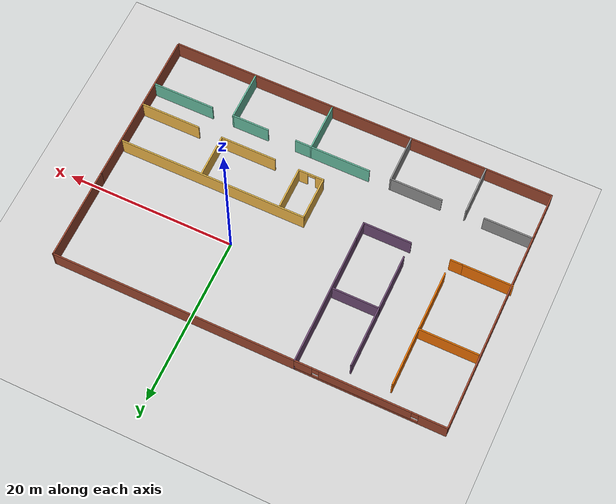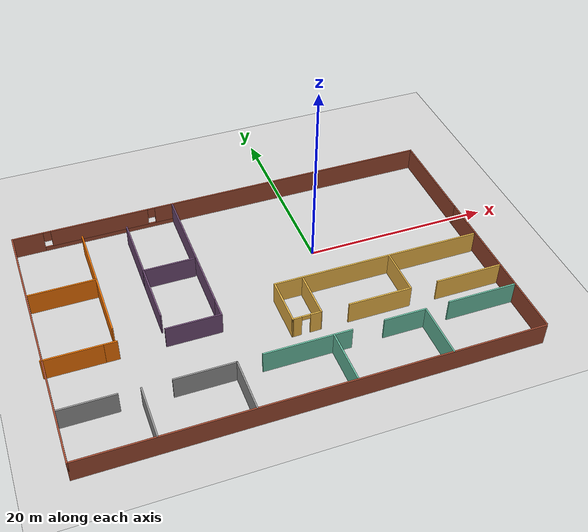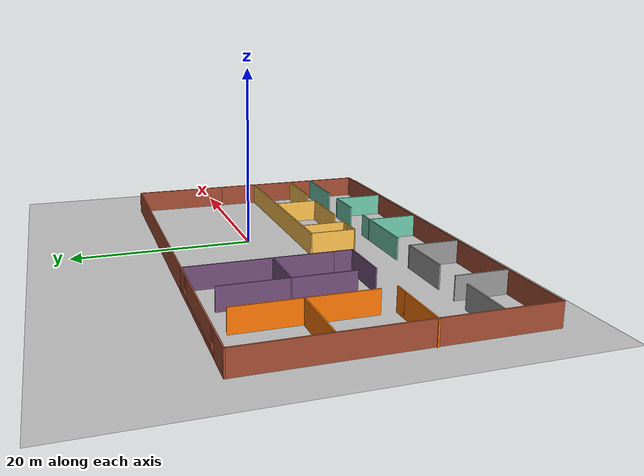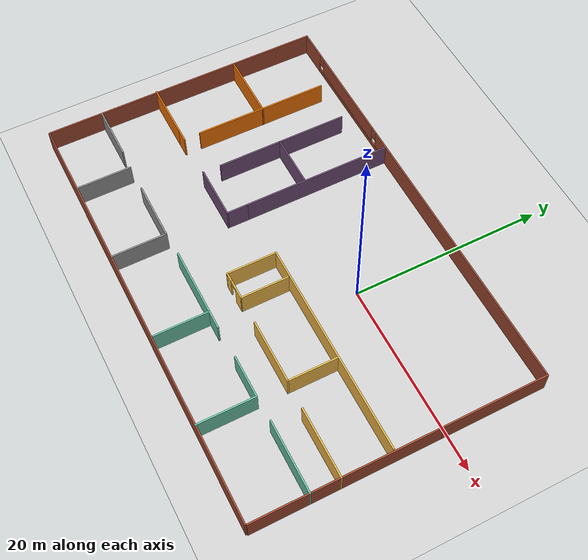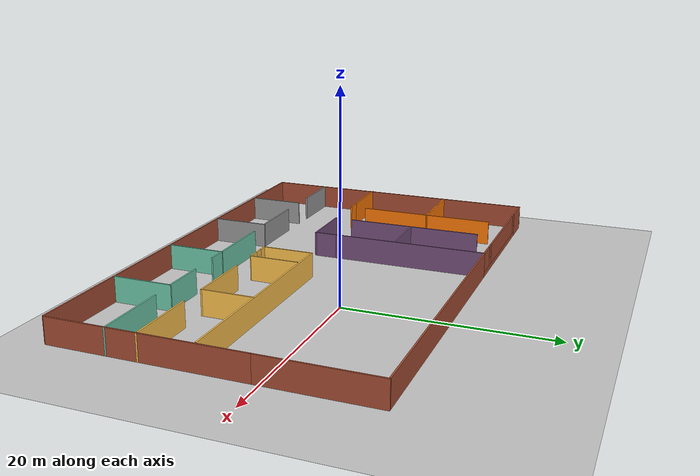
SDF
<sdf version="1.6">
 <world name="default">
  <model name="ground_plane">
   <static>1</static>
   <link name="link">
    <collision name="collision">
     <geometry><plane><normal>0 0 1</normal><size>100 100</size></plane></geometry>
     <surface><friction><ode><mu>100</mu><mu2>50</mu2></ode></friction></surface>
    </collision>
    <visual name="visual">
     <cast_shadows>0</cast_shadows>
     <geometry><plane><normal>0 0 1</normal><size>100 100</size></plane></geometry>
     <material>
      <script><uri>file://media/materials/scripts/gazebo.material</uri><name>Gazebo/Grey</name></script>
     </material>
    </visual>
   </link>
  </model>
  <model name="sinap_office">
   <pose>-6.8627 -4.6506 0 0 -0 0</pose>
   <link name="Wall_11">
    <pose>-14.3528 14.8 0 0 -0 0</pose>
    <visual name="Wall_11_Visual_0">
     <pose>-7.1066 0 1.25 0 -0 0</pose>
     <geometry><box><size>3.2868 0.15 2.5</size></box></geometry>
     <material>
      <script><uri>file://media/materials/scripts/gazebo.material</uri><name>Gazebo/Bricks</name></script>
      <ambient>1 1 1 1</ambient>
     </material>
     <meta><layer>0</layer></meta>
    </visual>
    <collision name="Wall_11_Collision_0">
     <geometry><box><size>3.2868 0.15 2.5</size></box></geometry>
     <pose>-7.1066 0 1.25 0 -0 0</pose>
    </collision>
    <visual name="Wall_11_Visual_1">
     <pose>1.6434 0 0.25 0 -0 0</pose>
     <geometry><box><size>14.2132 0.15 0.5</size></box></geometry>
     <material>
      <script><uri>file://media/materials/scripts/gazebo.material</uri><name>Gazebo/Bricks</name></script>
      <ambient>1 1 1 1</ambient>
     </material>
     <meta><layer>0</layer></meta>
    </visual>
    <collision name="Wall_11_Collision_1">
     <geometry><box><size>14.2132 0.15 0.5</size></box></geometry>
     <pose>1.6434 0 0.25 0 -0 0</pose>
    </collision>
    <visual name="Wall_11_Visual_2">
     <pose>0.608596 0 1.5 0 -0 0</pose>
     <geometry><box><size>10.5436 0.15 2</size></box></geometry>
     <material>
      <script><uri>file://media/materials/scripts/gazebo.material</uri><name>Gazebo/Bricks</name></script>
      <ambient>1 1 1 1</ambient>
     </material>
     <meta><layer>0</layer></meta>
    </visual>
    <collision name="Wall_11_Collision_2">
     <geometry><box><size>10.5436 0.15 2</size></box></geometry>
     <pose>0.608596 0 1.5 0 -0 0</pose>
    </collision>
    <visual name="Wall_11_Visual_3">
     <pose>7.71519 0 1.5 0 -0 0</pose>
     <geometry><box><size>2.06961 0.15 2</size></box></geometry>
     <material>
      <script><uri>file://media/materials/scripts/gazebo.material</uri><name>Gazebo/Bricks</name></script>
      <ambient>1 1 1 1</ambient>
     </material>
     <meta><layer>0</layer></meta>
    </visual>
    <collision name="Wall_11_Collision_3">
     <geometry><box><size>2.06961 0.15 2</size></box></geometry>
     <pose>7.71519 0 1.5 0 -0 0</pose>
    </collision>
    <visual name="Wall_11_Visual_4">
     <pose>-5.0632 0 1.9 0 -0 0</pose>
     <geometry><box><size>0.8 0.15 1.2</size></box></geometry>
     <material>
      <script><uri>file://media/materials/scripts/gazebo.material</uri><name>Gazebo/Bricks</name></script>
      <ambient>1 1 1 1</ambient>
     </material>
     <meta><layer>0</layer></meta>
    </visual>
    <collision name="Wall_11_Collision_4">
     <geometry><box><size>0.8 0.15 1.2</size></box></geometry>
     <pose>-5.0632 0 1.9 0 -0 0</pose>
    </collision>
    <visual name="Wall_11_Visual_5">
     <pose>6.28039 0 1.9 0 -0 0</pose>
     <geometry><box><size>0.8 0.15 1.2</size></box></geometry>
     <material>
      <script><uri>file://media/materials/scripts/gazebo.material</uri><name>Gazebo/Bricks</name></script>
      <ambient>1 1 1 1</ambient>
     </material>
     <meta><layer>0</layer></meta>
    </visual>
    <collision name="Wall_11_Collision_5">
     <geometry><box><size>0.8 0.15 1.2</size></box></geometry>
     <pose>6.28039 0 1.9 0 -0 0</pose>
    </collision>
   </link>
   <link name="Wall_12">
    <collision name="Wall_12_Collision">
     <geometry><box><size>15.75 0.15 2.5</size></box></geometry>
     <pose>0 0 1.25 0 -0 0</pose>
    </collision>
    <visual name="Wall_12_Visual">
     <pose>0 0 1.25 0 -0 0</pose>
     <geometry><box><size>15.75 0.15 2.5</size></box></geometry>
     <material>
      <script><uri>file://media/materials/scripts/gazebo.material</uri><name>Gazebo/Grey</name></script>
      <ambient>0.458824 0.313726 0.482353 1</ambient>
     </material>
     <meta><layer>0</layer></meta>
    </visual>
    <pose>-5.67784 7 0 0 -0 -1.5708</pose>
   </link>
   <link name="Wall_14">
    <collision name="Wall_14_Collision">
     <geometry><box><size>29 0.15 2.5</size></box></geometry>
     <pose>0 0 1.25 0 -0 0</pose>
    </collision>
    <visual name="Wall_14_Visual">
     <pose>0 0 1.25 0 -0 0</pose>
     <geometry><box><size>29 0.15 2.5</size></box></geometry>
     <material>
      <script><uri>file://media/materials/scripts/gazebo.material</uri><name>Gazebo/Bricks</name></script>
      <ambient>1 1 1 1</ambient>
     </material>
     <meta><layer>0</layer></meta>
    </visual>
    <pose>8.74716 14.8 0 0 -0 0</pose>
   </link>
   <link name="Wall_15">
    <collision name="Wall_15_Collision">
     <geometry><box><size>11 0.15 2.5</size></box></geometry>
     <pose>0 0 1.25 0 -0 0</pose>
    </collision>
    <visual name="Wall_15_Visual">
     <pose>0 0 1.25 0 -0 0</pose>
     <geometry><box><size>11 0.15 2.5</size></box></geometry>
     <material>
      <script><uri>file://media/materials/scripts/gazebo.material</uri><name>Gazebo/Bricks</name></script>
      <ambient>1 1 1 1</ambient>
     </material>
     <meta><layer>0</layer></meta>
    </visual>
    <pose>23.1722 9.375 0 0 -0 -1.5708</pose>
   </link>
   <link name="Wall_16">
    <collision name="Wall_16_Collision">
     <geometry><box><size>18.75 0.15 2.5</size></box></geometry>
     <pose>0 0 1.25 0 -0 0</pose>
    </collision>
    <visual name="Wall_16_Visual">
     <pose>0 0 1.25 0 -0 0</pose>
     <geometry><box><size>18.75 0.15 2.5</size></box></geometry>
     <material>
      <script><uri>file://media/materials/scripts/gazebo.material</uri><name>Gazebo/Bricks</name></script>
      <ambient>1 1 1 1</ambient>
     </material>
     <meta><layer>0</layer></meta>
    </visual>
    <pose>23.1722 -5.35 0 0 -0 -1.5708</pose>
   </link>
   <link name="Wall_18">
    <collision name="Wall_18_Collision">
     <geometry><box><size>46.25 0.15 2.5</size></box></geometry>
     <pose>0 0 1.25 0 -0 0</pose>
    </collision>
    <visual name="Wall_18_Visual">
     <pose>0 0 1.25 0 -0 0</pose>
     <geometry><box><size>46.25 0.15 2.5</size></box></geometry>
     <material>
      <script><uri>file://media/materials/scripts/gazebo.material</uri><name>Gazebo/Bricks</name></script>
      <ambient>0.435294 0.796078 0.67451 1</ambient>
     </material>
     <meta><layer>0</layer></meta>
    </visual>
    <pose>0.022159 -14.8 0 0 -0 0</pose>
   </link>
   <link name="Wall_22">
    <collision name="Wall_22_Collision">
     <geometry><box><size>22.5 0.15 2.5</size></box></geometry>
     <pose>0 0 1.25 0 -0 0</pose>
    </collision>
    <visual name="Wall_22_Visual">
     <pose>0 0 1.25 0 -0 0</pose>
     <geometry><box><size>22.5 0.15 2.5</size></box></geometry>
     <material>
      <script><uri>file://media/materials/scripts/gazebo.material</uri><name>Gazebo/Grey</name></script>
      <ambient>1 0.764706 0.305882 1</ambient>
     </material>
     <meta><layer>0</layer></meta>
    </visual>
    <pose>11.7514 -0.741547 0 0 -0 0</pose>
   </link>
   <link name="Wall_24">
    <collision name="Wall_24_Collision">
     <geometry><box><size>5.25 0.15 2.5</size></box></geometry>
     <pose>0 0 1.25 0 -0 0</pose>
    </collision>
    <visual name="Wall_24_Visual">
     <pose>0 0 1.25 0 -0 0</pose>
     <geometry><box><size>5.25 0.15 2.5</size></box></geometry>
     <material>
      <script><uri>file://media/materials/scripts/gazebo.material</uri><name>Gazebo/Grey</name></script>
      <ambient>1 0.764706 0.305882 1</ambient>
     </material>
     <meta><layer>0</layer></meta>
    </visual>
    <pose>0.57639 -3.29155 0 0 -0 -1.5708</pose>
   </link>
   <link name="Wall_31">
    <collision name="Wall_31_Collision">
     <geometry><box><size>2.25 0.15 2.5</size></box></geometry>
     <pose>0 0 1.25 0 -0 0</pose>
    </collision>
    <visual name="Wall_31_Visual">
     <pose>0 0 1.25 0 -0 0</pose>
     <geometry><box><size>2.25 0.15 2.5</size></box></geometry>
     <material>
      <script><uri>file://media/materials/scripts/gazebo.material</uri><name>Gazebo/Grey</name></script>
      <ambient>0.458824 0.313726 0.482353 1</ambient>
     </material>
     <meta><layer>0</layer></meta>
    </visual>
    <pose>-5.67784 -1.85 0 0 -0 -1.5708</pose>
   </link>
   <link name="Wall_34">
    <collision name="Wall_34_Collision">
     <geometry><box><size>5.75 0.15 2.5</size></box></geometry>
     <pose>0 0 1.25 0 -0 0</pose>
    </collision>
    <visual name="Wall_34_Visual">
     <pose>0 0 1.25 0 -0 0</pose>
     <geometry><box><size>5.75 0.15 2.5</size></box></geometry>
     <material>
      <script><uri>file://media/materials/scripts/gazebo.material</uri><name>Gazebo/Grey</name></script>
      <ambient>0.458824 0.313726 0.482353 1</ambient>
     </material>
     <meta><layer>0</layer></meta>
    </visual>
    <pose>-8.47784 -2.9 0 0 -0 3.14159</pose>
   </link>
   <link name="Wall_40">
    <collision name="Wall_40_Collision">
     <geometry><box><size>6 0.15 2.5</size></box></geometry>
     <pose>0 0 1.25 0 -0 0</pose>
    </collision>
    <visual name="Wall_40_Visual">
     <pose>0 0 1.25 0 -0 0</pose>
     <geometry><box><size>6 0.15 2.5</size></box></geometry>
     <material>
      <script><uri>file://media/materials/scripts/gazebo.material</uri><name>Gazebo/Grey</name></script>
      <ambient>0.996078 0.47451 0.0196078 1</ambient>
     </material>
     <meta><layer>0</layer></meta>
    </visual>
    <pose>-20.2478 -2.88015 0 0 -0 0</pose>
   </link>
   <link name="Wall_42">
    <collision name="Wall_42_Collision">
     <geometry><box><size>1.5 0.15 2.5</size></box></geometry>
     <pose>0 0 1.25 0 -0 0</pose>
    </collision>
    <visual name="Wall_42_Visual">
     <pose>0 0 1.25 0 -0 0</pose>
     <geometry><box><size>1.5 0.15 2.5</size></box></geometry>
     <material>
      <script><uri>file://media/materials/scripts/gazebo.material</uri><name>Gazebo/Grey</name></script>
      <ambient>0.996078 0.47451 0.0196078 1</ambient>
     </material>
     <meta><layer>0</layer></meta>
    </visual>
    <pose>-16.6478 -2.88015 0 0 -0 0</pose>
   </link>
   <link name="Wall_45">
    <collision name="Wall_45_Collision">
     <geometry><box><size>7 0.15 2.5</size></box></geometry>
     <pose>0 0 1.25 0 -0 0</pose>
    </collision>
    <visual name="Wall_45_Visual">
     <pose>0 0 1.25 0 -0 0</pose>
     <geometry><box><size>7 0.15 2.5</size></box></geometry>
     <material>
      <script><uri>file://media/materials/scripts/gazebo.material</uri><name>Gazebo/Grey</name></script>
      <ambient>0.996078 0.47451 0.0196078 1</ambient>
     </material>
     <meta><layer>0</layer></meta>
    </visual>
    <pose>-19.4223 5.97736 0 0 -0 3.14159</pose>
   </link>
   <link name="Wall_47">
    <collision name="Wall_47_Collision">
     <geometry><box><size>5.5 0.15 2.5</size></box></geometry>
     <pose>0 0 1.25 0 -0 0</pose>
    </collision>
    <visual name="Wall_47_Visual">
     <pose>0 0 1.25 0 -0 0</pose>
     <geometry><box><size>5.5 0.15 2.5</size></box></geometry>
     <material>
      <script><uri>file://media/materials/scripts/gazebo.material</uri><name>Gazebo/Grey</name></script>
      <ambient>0.458824 0.313726 0.482353 1</ambient>
     </material>
     <meta><layer>0</layer></meta>
    </visual>
    <pose>-8.56965 5.60305 0 0 -0 0</pose>
   </link>
   <link name="Wall_49">
    <collision name="Wall_49_Collision">
     <geometry><box><size>5 0.15 2.5</size></box></geometry>
     <pose>0 0 1.25 0 -0 0</pose>
    </collision>
    <visual name="Wall_49_Visual">
     <pose>0 0 1.25 0 -0 0</pose>
     <geometry><box><size>5 0.15 2.5</size></box></geometry>
     <material>
      <script><uri>file://media/materials/scripts/gazebo.material</uri><name>Gazebo/Grey</name></script>
      <ambient>1 0.764706 0.305882 1</ambient>
     </material>
     <meta><layer>0</layer></meta>
    </visual>
    <pose>3.54039 -3.38824 0 0 -0 1.5708</pose>
   </link>
   <link name="Wall_56">
    <collision name="Wall_56_Collision">
     <geometry><box><size>5.25 0.15 2.5</size></box></geometry>
     <pose>0 0 1.25 0 -0 0</pose>
    </collision>
    <visual name="Wall_56_Visual">
     <pose>0 0 1.25 0 -0 0</pose>
     <geometry><box><size>5.25 0.15 2.5</size></box></geometry>
     <material>
      <script><uri>file://media/materials/scripts/gazebo.material</uri><name>Gazebo/Grey</name></script>
      <ambient>1 0.764706 0.305882 1</ambient>
     </material>
     <meta><layer>0</layer></meta>
    </visual>
    <pose>13.1047 -3.29435 0 0 -0 -1.5708</pose>
   </link>
   <link name="Wall_60">
    <collision name="Wall_60_Collision">
     <geometry><box><size>5.75 0.15 2.5</size></box></geometry>
     <pose>0 0 1.25 0 -0 0</pose>
    </collision>
    <visual name="Wall_60_Visual">
     <pose>0 0 1.25 0 -0 0</pose>
     <geometry><box><size>5.75 0.15 2.5</size></box></geometry>
     <material>
      <script><uri>file://media/materials/scripts/gazebo.material</uri><name>Gazebo/Grey</name></script>
      <ambient>0.435294 0.796078 0.67451 1</ambient>
     </material>
     <meta><layer>0</layer></meta>
    </visual>
    <pose>3.52722 -11.8305 0 0 -0 -1.5708</pose>
   </link>
   <link name="Wall_62">
    <collision name="Wall_62_Collision">
     <geometry><box><size>5.75 0.15 2.5</size></box></geometry>
     <pose>0 0 1.25 0 -0 0</pose>
    </collision>
    <visual name="Wall_62_Visual">
     <pose>0 0 1.25 0 -0 0</pose>
     <geometry><box><size>5.75 0.15 2.5</size></box></geometry>
     <material>
      <script><uri>file://media/materials/scripts/gazebo.material</uri><name>Gazebo/Grey</name></script>
      <ambient>1 1 1 1</ambient>
     </material>
     <meta><layer>0</layer></meta>
    </visual>
    <pose>-6.15792 -11.9381 0 0 -0 -1.5708</pose>
   </link>
   <link name="Wall_64">
    <collision name="Wall_64_Collision">
     <geometry><box><size>5.75 0.15 2.5</size></box></geometry>
     <pose>0 0 1.25 0 -0 0</pose>
    </collision>
    <visual name="Wall_64_Visual">
     <pose>0 0 1.25 0 -0 0</pose>
     <geometry><box><size>5.75 0.15 2.5</size></box></geometry>
     <material>
      <script><uri>file://media/materials/scripts/gazebo.material</uri><name>Gazebo/Grey</name></script>
      <ambient>1 1 1 1</ambient>
     </material>
     <meta><layer>0</layer></meta>
    </visual>
    <pose>-15.1974 -11.9381 0 0 -0 -1.5708</pose>
   </link>
   <link name="Wall_66">
    <collision name="Wall_66_Collision">
     <geometry><box><size>7.25 0.15 2.5</size></box></geometry>
     <pose>0 0 1.25 0 -0 0</pose>
    </collision>
    <visual name="Wall_66_Visual">
     <pose>0 0 1.25 0 -0 0</pose>
     <geometry><box><size>7.25 0.15 2.5</size></box></geometry>
     <material>
      <script><uri>file://media/materials/scripts/gazebo.material</uri><name>Gazebo/Grey</name></script>
      <ambient>0.458824 0.313726 0.482353 1</ambient>
     </material>
     <meta><layer>0</layer></meta>
    </visual>
    <pose>-11.2446 9.15305 0 0 -0 1.5708</pose>
   </link>
   <link name="Wall_68">
    <collision name="Wall_68_Collision">
     <geometry><box><size>6.75 0.15 2.5</size></box></geometry>
     <pose>0 0 1.25 0 -0 0</pose>
    </collision>
    <visual name="Wall_68_Visual">
     <pose>0 0 1.25 0 -0 0</pose>
     <geometry><box><size>6.75 0.15 2.5</size></box></geometry>
     <material>
      <script><uri>file://media/materials/scripts/gazebo.material</uri><name>Gazebo/Grey</name></script>
      <ambient>0.458824 0.313726 0.482353 1</ambient>
     </material>
     <meta><layer>0</layer></meta>
    </visual>
    <pose>-11.2446 2.30305 0 0 -0 -1.5708</pose>
   </link>
   <link name="Wall_70">
    <collision name="Wall_70_Collision">
     <geometry><box><size>7.25003 0.15 2.5</size></box></geometry>
     <pose>0 0 1.25 0 -0 0</pose>
    </collision>
    <visual name="Wall_70_Visual">
     <pose>0 0 1.25 0 -0 0</pose>
     <geometry><box><size>7.25003 0.15 2.5</size></box></geometry>
     <material>
      <script><uri>file://media/materials/scripts/gazebo.material</uri><name>Gazebo/Grey</name></script>
      <ambient>0.996078 0.47451 0.0196078 1</ambient>
     </material>
     <meta><layer>0</layer></meta>
    </visual>
    <pose>-16.0071 2.42736 0 0 -0 -1.57358</pose>
   </link>
   <link name="Wall_72">
    <collision name="Wall_72_Collision">
     <geometry><box><size>7 0.15 2.5</size></box></geometry>
     <pose>0 0 1.25 0 -0 0</pose>
    </collision>
    <visual name="Wall_72_Visual">
     <pose>0 0 1.25 0 -0 0</pose>
     <geometry><box><size>7 0.15 2.5</size></box></geometry>
     <material>
      <script><uri>file://media/materials/scripts/gazebo.material</uri><name>Gazebo/Grey</name></script>
      <ambient>0.996078 0.47451 0.0196078 1</ambient>
     </material>
     <meta><layer>0</layer></meta>
    </visual>
    <pose>-15.9973 9.38258 0 0 -0 1.5708</pose>
   </link>
   <link name="Wall_74">
    <collision name="Wall_74_Collision">
     <geometry><box><size>5.75 0.15 2.5</size></box></geometry>
     <pose>0 0 1.25 0 -0 0</pose>
    </collision>
    <visual name="Wall_74_Visual">
     <pose>0 0 1.25 0 -0 0</pose>
     <geometry><box><size>5.75 0.15 2.5</size></box></geometry>
     <material>
      <script><uri>file://media/materials/scripts/gazebo.material</uri><name>Gazebo/Grey</name></script>
      <ambient>1 1 1 1</ambient>
     </material>
     <meta><layer>0</layer></meta>
    </visual>
    <pose>-20.1768 -9.05523 0 0 -0 0</pose>
   </link>
   <link name="Wall_76">
    <collision name="Wall_76_Collision">
     <geometry><box><size>6.25 0.15 2.5</size></box></geometry>
     <pose>0 0 1.25 0 -0 0</pose>
    </collision>
    <visual name="Wall_76_Visual">
     <pose>0 0 1.25 0 -0 0</pose>
     <geometry><box><size>6.25 0.15 2.5</size></box></geometry>
     <material>
      <script><uri>file://media/materials/scripts/gazebo.material</uri><name>Gazebo/Grey</name></script>
      <ambient>1 1 1 1</ambient>
     </material>
     <meta><layer>0</layer></meta>
    </visual>
    <pose>-9.20792 -9.13814 0 0 -0 3.14159</pose>
   </link>
   <link name="Wall_78">
    <collision name="Wall_78_Collision">
     <geometry><box><size>7.25 0.15 2.5</size></box></geometry>
     <pose>0 0 1.25 0 -0 0</pose>
    </collision>
    <visual name="Wall_78_Visual">
     <pose>0 0 1.25 0 -0 0</pose>
     <geometry><box><size>7.25 0.15 2.5</size></box></geometry>
     <material>
      <script><uri>file://media/materials/scripts/gazebo.material</uri><name>Gazebo/Grey</name></script>
      <ambient>0.435294 0.796078 0.67451 1</ambient>
     </material>
     <meta><layer>0</layer></meta>
    </visual>
    <pose>-0.022782 -9.03053 0 0 -0 3.14159</pose>
   </link>
   <link name="Wall_80">
    <collision name="Wall_80_Collision">
     <geometry><box><size>2 0.15 2.5</size></box></geometry>
     <pose>0 0 1.25 0 -0 0</pose>
    </collision>
    <visual name="Wall_80_Visual">
     <pose>0 0 1.25 0 -0 0</pose>
     <geometry><box><size>2 0.15 2.5</size></box></geometry>
     <material>
      <script><uri>file://media/materials/scripts/gazebo.material</uri><name>Gazebo/Grey</name></script>
      <ambient>0.435294 0.796078 0.67451 1</ambient>
     </material>
     <meta><layer>0</layer></meta>
    </visual>
    <pose>4.45222 -9.03053 0 0 -0 0</pose>
   </link>
   <link name="Wall_83">
    <collision name="Wall_83_Collision">
     <geometry><box><size>4.5 0.15 2.5</size></box></geometry>
     <pose>0 0 1.25 0 -0 0</pose>
    </collision>
    <visual name="Wall_83_Visual">
     <pose>0 0 1.25 0 -0 0</pose>
     <geometry><box><size>4.5 0.15 2.5</size></box></geometry>
     <material>
      <script><uri>file://media/materials/scripts/gazebo.material</uri><name>Gazebo/Grey</name></script>
      <ambient>0.435294 0.796078 0.67451 1</ambient>
     </material>
     <meta><layer>0</layer></meta>
    </visual>
    <pose>11.0308 -8.93741 0 0 -0 0</pose>
   </link>
   <link name="Wall_84">
    <collision name="Wall_84_Collision">
     <geometry><box><size>6 0.15 2.5</size></box></geometry>
     <pose>0 0 1.25 0 -0 0</pose>
    </collision>
    <visual name="Wall_84_Visual">
     <pose>0 0 1.25 0 -0 0</pose>
     <geometry><box><size>6 0.15 2.5</size></box></geometry>
     <material>
      <script><uri>file://media/materials/scripts/gazebo.material</uri><name>Gazebo/Grey</name></script>
      <ambient>0.435294 0.796078 0.67451 1</ambient>
     </material>
     <meta><layer>0</layer></meta>
    </visual>
    <pose>13.2058 -11.8624 0 0 -0 -1.5708</pose>
   </link>
   <link name="Wall_86">
    <collision name="Wall_86_Collision">
     <geometry><box><size>7.25 0.15 2.5</size></box></geometry>
     <pose>0 0 1.25 0 -0 0</pose>
    </collision>
    <visual name="Wall_86_Visual">
     <pose>0 0 1.25 0 -0 0</pose>
     <geometry><box><size>7.25 0.15 2.5</size></box></geometry>
     <material>
      <script><uri>file://media/materials/scripts/gazebo.material</uri><name>Gazebo/Grey</name></script>
      <ambient>1 0.764706 0.305882 1</ambient>
     </material>
     <meta><layer>0</layer></meta>
    </visual>
    <pose>19.6228 -5.9023 0 0 -0 3.14159</pose>
   </link>
   <link name="Wall_88">
    <collision name="Wall_88_Collision">
     <geometry><box><size>7.5 0.15 2.5</size></box></geometry>
     <pose>0 0 1.25 0 -0 0</pose>
    </collision>
    <visual name="Wall_88_Visual">
     <pose>0 0 1.25 0 -0 0</pose>
     <geometry><box><size>7.5 0.15 2.5</size></box></geometry>
     <material>
      <script><uri>file://media/materials/scripts/gazebo.material</uri><name>Gazebo/Grey</name></script>
      <ambient>0.435294 0.796078 0.67451 1</ambient>
     </material>
     <meta><layer>0</layer></meta>
    </visual>
    <pose>19.4978 -8.8647 0 0 -0 3.14159</pose>
   </link>
   <link name="Wall_9">
    <collision name="Wall_9_Collision">
     <geometry><box><size>29.75 0.15 2.5</size></box></geometry>
     <pose>0 0 1.25 0 -0 0</pose>
    </collision>
    <visual name="Wall_9_Visual">
     <pose>0 0 1.25 0 -0 0</pose>
     <geometry><box><size>29.75 0.15 2.5</size></box></geometry>
     <material>
      <script><uri>file://media/materials/scripts/gazebo.material</uri><name>Gazebo/Bricks</name></script>
      <ambient>1 1 1 1</ambient>
     </material>
     <meta><layer>0</layer></meta>
    </visual>
    <pose>-23.0278 0 0 0 -0 -1.5708</pose>
   </link>
   <link name="Wall_91">
    <collision name="Wall_91_Collision">
     <geometry><box><size>6.75 0.15 2.5</size></box></geometry>
     <pose>0 0 1.25 0 -0 0</pose>
    </collision>
    <visual name="Wall_91_Visual">
     <pose>0 0 1.25 0 -0 0</pose>
     <geometry><box><size>6.75 0.15 2.5</size></box></geometry>
     <material>
      <script><uri>file://media/materials/scripts/gazebo.material</uri><name>Gazebo/Grey</name></script>
      <ambient>1 0.764706 0.305882 1</ambient>
     </material>
     <meta><layer>0</layer></meta>
    </visual>
    <pose>9.80474 -5.84436 0 0 -0 3.14159</pose>
   </link>
   <link name="Wall_93">
    <pose>2.05839 -5.8274 0 0 -0 0.009549</pose>
    <visual name="Wall_93_Visual_0">
     <pose>-1.05491 0 1.25 0 -0 0</pose>
     <geometry><box><size>1.00432 0.15 2.5</size></box></geometry>
     <material>
      <script><uri>file://media/materials/scripts/gazebo.material</uri><name>Gazebo/Grey</name></script>
      <ambient>1 0.764706 0.305882 1</ambient>
     </material>
     <meta><layer>0</layer></meta>
    </visual>
    <collision name="Wall_93_Collision_0">
     <geometry><box><size>1.00432 0.15 2.5</size></box></geometry>
     <pose>-1.05491 0 1.25 0 -0 0</pose>
    </collision>
    <visual name="Wall_93_Visual_1">
     <pose>0.95216 0 1.25 0 -0 0</pose>
     <geometry><box><size>1.20982 0.15 2.5</size></box></geometry>
     <material>
      <script><uri>file://media/materials/scripts/gazebo.material</uri><name>Gazebo/Grey</name></script>
      <ambient>1 0.764706 0.305882 1</ambient>
     </material>
     <meta><layer>0</layer></meta>
    </visual>
    <collision name="Wall_93_Collision_1">
     <geometry><box><size>1.20982 0.15 2.5</size></box></geometry>
     <pose>0.95216 0 1.25 0 -0 0</pose>
    </collision>
    <visual name="Wall_93_Visual_2">
     <pose>-0.102748 0 2.25 0 -0 0</pose>
     <geometry><box><size>0.9 0.15 0.5</size></box></geometry>
     <material>
      <script><uri>file://media/materials/scripts/gazebo.material</uri><name>Gazebo/Grey</name></script>
      <ambient>1 0.764706 0.305882 1</ambient>
     </material>
     <meta><layer>0</layer></meta>
    </visual>
    <collision name="Wall_93_Collision_2">
     <geometry><box><size>0.9 0.15 0.5</size></box></geometry>
     <pose>-0.102748 0 2.25 0 -0 0</pose>
    </collision>
   </link>
   <static>1</static>
  </model>
 </world>
</sdf>
